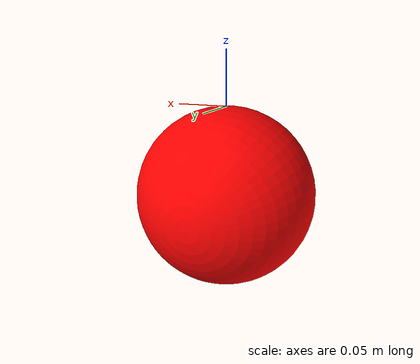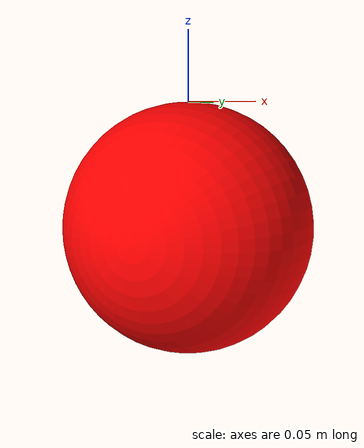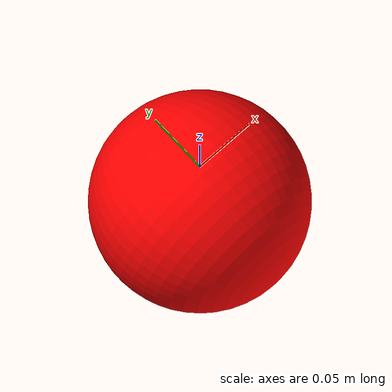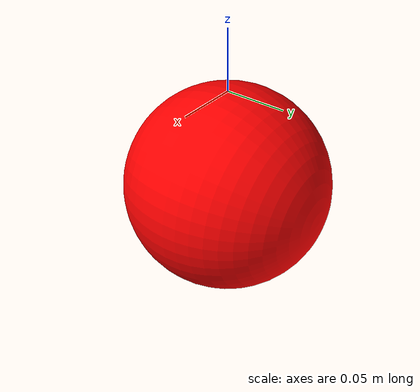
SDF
<?xml version="1.0" encoding="utf-8"?>
<sdf version="1.5">
  <model name="Ball">
    <pose>0 0 -0.0888999999999999 0 0 0</pose>
    <plugin name="clock" filename="libgz_clock.so">
      <topic>/gazebo/frc/time</topic>
    </plugin>
    <link name="Ball">
      <gravity>1</gravity>
      <self_collide>0</self_collide>
      <pose>-6.80444377776246E-19 1.38777878078145E-17 0 0 0 0</pose>
      <must_be_base_link>1</must_be_base_link>
      <velocity_decay>
        <linear>0</linear>
        <angular>0</angular>
      </velocity_decay>
      <inertial>
        <mass>0.17</mass>
        <pose>0 0 0 0 0 0</pose>
        <inertia>
          <ixx>0.000149031563620964</ixx>
          <ixy>0</ixy>
          <ixz>0</ixz>
          <iyy>0.000149031563620964</iyy>
          <iyz>9.31990791856974E-54</iyz>
          <izz>0.000149031563620964</izz>
        </inertia>
      </inertial>
      <collision name="Ball_collision">
        <pose>-5.14683665419605E-18 -0.0889 0 0 0 0</pose>
        <geometry>
          <mesh>
            <scale>1 1 1</scale>
            <uri>model://Ball/meshes/Ball_col.STL</uri>
          </mesh>
        </geometry>
        <surface>
          <contact>
            <ode />
          </contact>
          <friction>
            <ode>
              <mu>0</mu>
              <mu2>0</mu2>
            </ode>
          </friction>
        </surface>
      </collision>
      <visual name="Ball_visual">
        <pose>-5.14683665419605E-18 -0.0889 0 0 0 0</pose>
        <material>
          <ambient>1 0 0 1</ambient>
          <diffuse>1 0 0 1</diffuse>
        </material>
        <geometry>
          <mesh>
            <scale>1 1 1</scale>
            <uri>model://Ball/meshes/Ball.STL</uri>
          </mesh>
        </geometry>
      </visual>
    </link>
  </model>
</sdf>
